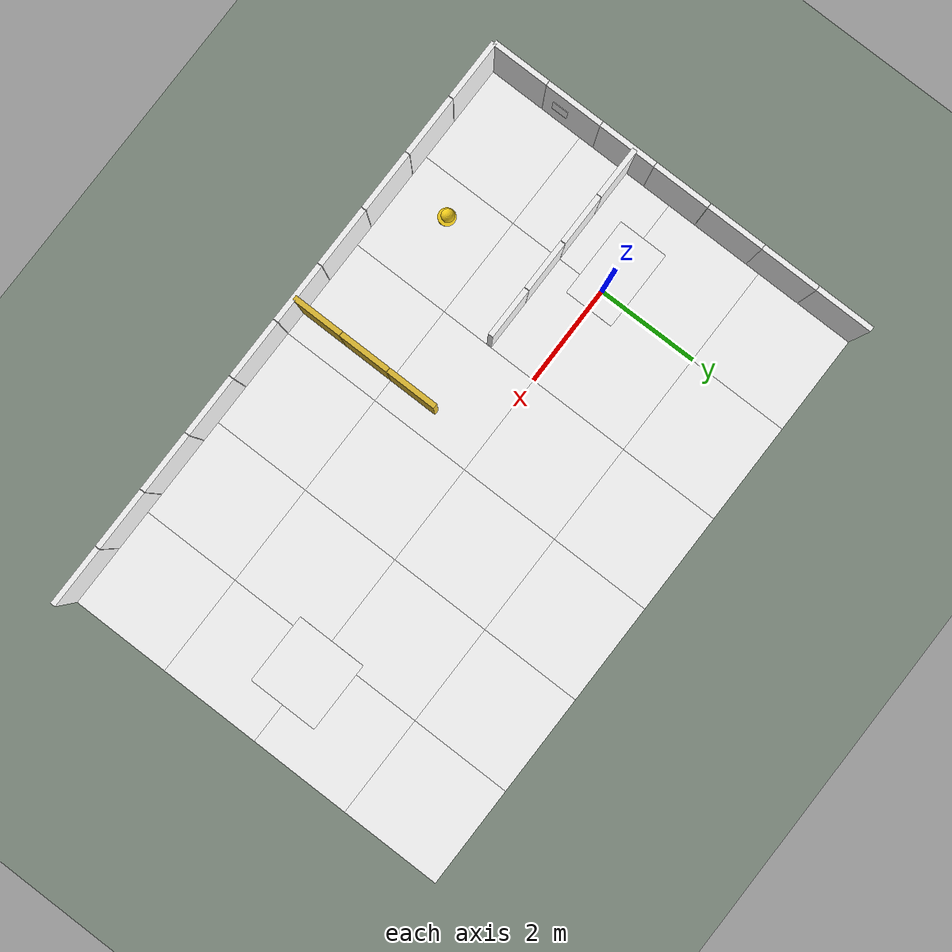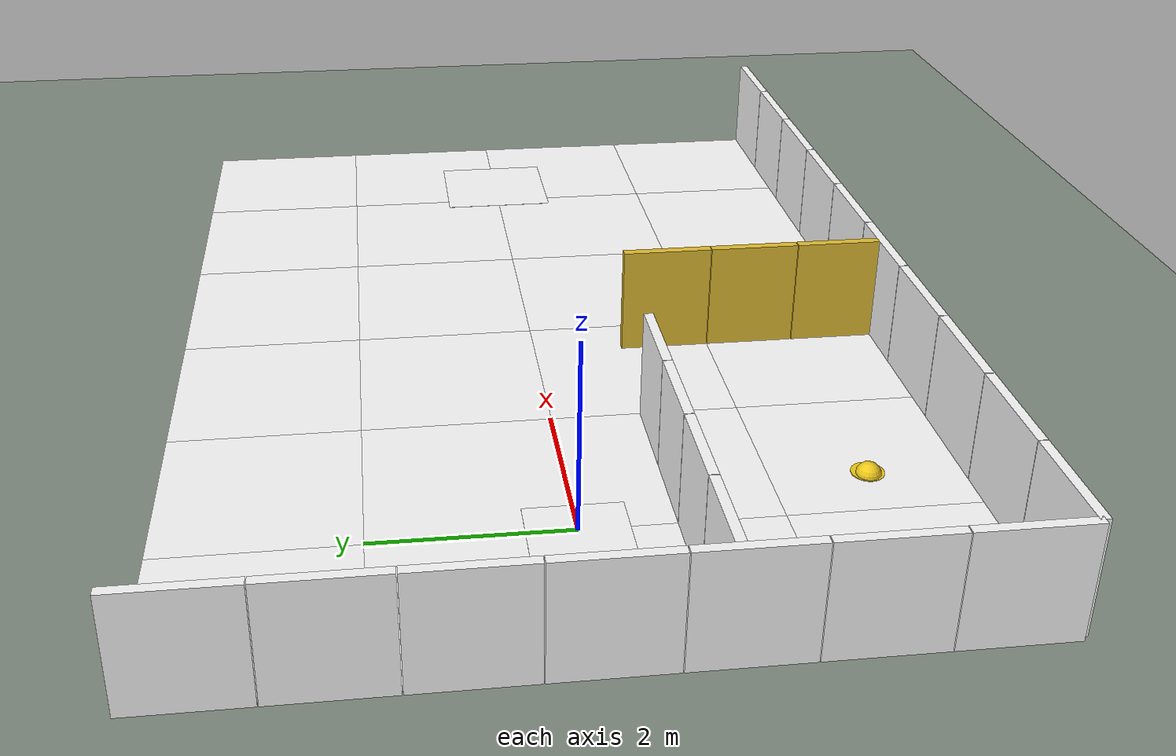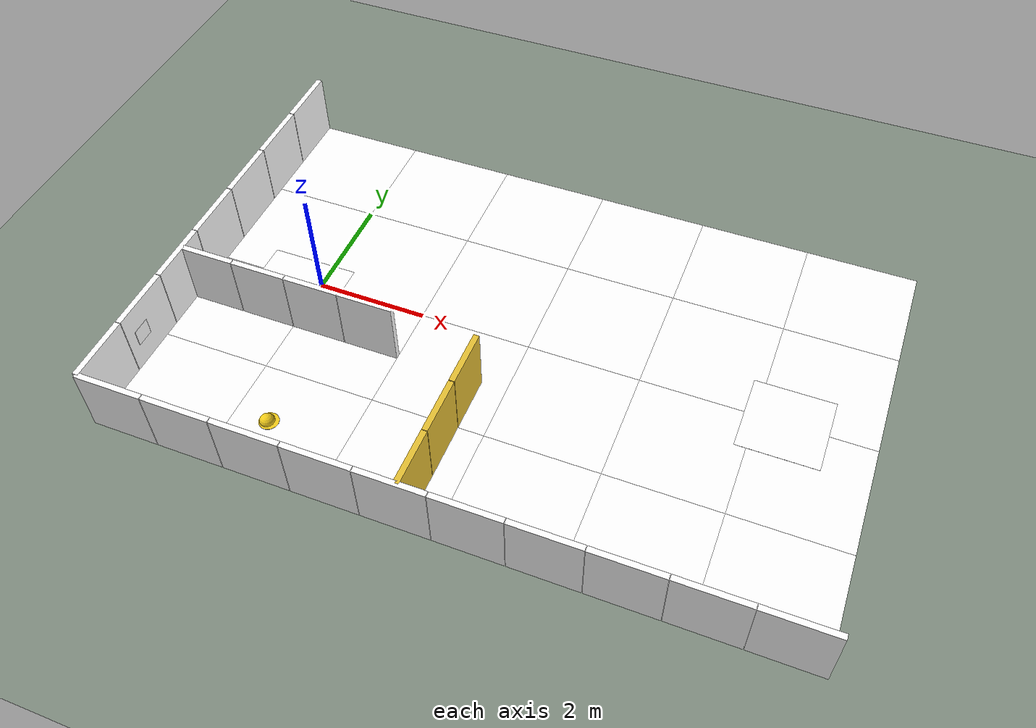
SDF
<sdf version="1.9">
 <world name="rescue_maze">
  <model name="ground_plane">
   <static>true</static>
   <link name="link">
    <collision name="collision">
     <geometry><plane><normal>0 0 1</normal><size>40 40</size></plane></geometry>
    </collision>
    <visual name="visual">
     <geometry><plane><normal>0 0 1</normal><size>40 40</size></plane></geometry>
     <material><ambient>0.5 0.55 0.5 1</ambient><diffuse>0.5 0.55 0.5 1</diffuse></material>
    </visual>
   </link>
  </model>
  <model name="arena_floor">
   <static>true</static>
   <link name="link">
    <visual name="tile_0_0">
     <pose>-1 -3 0.001 0 0 0</pose>
     <geometry><box><size>2 2 0.002</size></box></geometry>
     <material>
      <diffuse>1 1 1 1</diffuse>
      <specular>0.1 0.1 0.1 1</specular>
      <pbr>
       <metal>
        <albedo_map>textures/osb_floor.jpg</albedo_map>
        <roughness>0.9</roughness>
        <metalness>0</metalness>
       </metal>
      </pbr>
     </material>
    </visual>
    <visual name="tile_0_1">
     <pose>-1 -1 0.001 0 0 0</pose>
     <geometry><box><size>2 2 0.002</size></box></geometry>
     <material>
      <diffuse>1 1 1 1</diffuse>
      <specular>0.1 0.1 0.1 1</specular>
      <pbr>
       <metal>
        <albedo_map>textures/osb_floor.jpg</albedo_map>
        <roughness>0.9</roughness>
        <metalness>0</metalness>
       </metal>
      </pbr>
     </material>
    </visual>
    <visual name="tile_0_2">
     <pose>-1 1 0.001 0 0 0</pose>
     <geometry><box><size>2 2 0.002</size></box></geometry>
     <material>
      <diffuse>1 1 1 1</diffuse>
      <specular>0.1 0.1 0.1 1</specular>
      <pbr>
       <metal>
        <albedo_map>textures/osb_floor.jpg</albedo_map>
        <roughness>0.9</roughness>
        <metalness>0</metalness>
       </metal>
      </pbr>
     </material>
    </visual>
    <visual name="tile_0_3">
     <pose>-1 3 0.001 0 0 0</pose>
     <geometry><box><size>2 2 0.002</size></box></geometry>
     <material>
      <diffuse>1 1 1 1</diffuse>
      <specular>0.1 0.1 0.1 1</specular>
      <pbr>
       <metal>
        <albedo_map>textures/osb_floor.jpg</albedo_map>
        <roughness>0.9</roughness>
        <metalness>0</metalness>
       </metal>
      </pbr>
     </material>
    </visual>
    <visual name="tile_1_0">
     <pose>1 -3 0.001 0 0 0</pose>
     <geometry><box><size>2 2 0.002</size></box></geometry>
     <material>
      <diffuse>1 1 1 1</diffuse>
      <specular>0.1 0.1 0.1 1</specular>
      <pbr>
       <metal>
        <albedo_map>textures/osb_floor.jpg</albedo_map>
        <roughness>0.9</roughness>
        <metalness>0</metalness>
       </metal>
      </pbr>
     </material>
    </visual>
    <visual name="tile_1_1">
     <pose>1 -1 0.001 0 0 0</pose>
     <geometry><box><size>2 2 0.002</size></box></geometry>
     <material>
      <diffuse>1 1 1 1</diffuse>
      <specular>0.1 0.1 0.1 1</specular>
      <pbr>
       <metal>
        <albedo_map>textures/osb_floor.jpg</albedo_map>
        <roughness>0.9</roughness>
        <metalness>0</metalness>
       </metal>
      </pbr>
     </material>
    </visual>
    <visual name="tile_1_2">
     <pose>1 1 0.001 0 0 0</pose>
     <geometry><box><size>2 2 0.002</size></box></geometry>
     <material>
      <diffuse>1 1 1 1</diffuse>
      <specular>0.1 0.1 0.1 1</specular>
      <pbr>
       <metal>
        <albedo_map>textures/osb_floor.jpg</albedo_map>
        <roughness>0.9</roughness>
        <metalness>0</metalness>
       </metal>
      </pbr>
     </material>
    </visual>
    <visual name="tile_1_3">
     <pose>1 3 0.001 0 0 0</pose>
     <geometry><box><size>2 2 0.002</size></box></geometry>
     <material>
      <diffuse>1 1 1 1</diffuse>
      <specular>0.1 0.1 0.1 1</specular>
      <pbr>
       <metal>
        <albedo_map>textures/osb_floor.jpg</albedo_map>
        <roughness>0.9</roughness>
        <metalness>0</metalness>
       </metal>
      </pbr>
     </material>
    </visual>
    <visual name="tile_2_0">
     <pose>3 -3 0.001 0 0 0</pose>
     <geometry><box><size>2 2 0.002</size></box></geometry>
     <material>
      <diffuse>1 1 1 1</diffuse>
      <specular>0.1 0.1 0.1 1</specular>
      <pbr>
       <metal>
        <albedo_map>textures/osb_floor.jpg</albedo_map>
        <roughness>0.9</roughness>
        <metalness>0</metalness>
       </metal>
      </pbr>
     </material>
    </visual>
    <visual name="tile_2_1">
     <pose>3 -1 0.001 0 0 0</pose>
     <geometry><box><size>2 2 0.002</size></box></geometry>
     <material>
      <diffuse>1 1 1 1</diffuse>
      <specular>0.1 0.1 0.1 1</specular>
      <pbr>
       <metal>
        <albedo_map>textures/osb_floor.jpg</albedo_map>
        <roughness>0.9</roughness>
        <metalness>0</metalness>
       </metal>
      </pbr>
     </material>
    </visual>
    <visual name="tile_2_2">
     <pose>3 1 0.001 0 0 0</pose>
     <geometry><box><size>2 2 0.002</size></box></geometry>
     <material>
      <diffuse>1 1 1 1</diffuse>
      <specular>0.1 0.1 0.1 1</specular>
      <pbr>
       <metal>
        <albedo_map>textures/osb_floor.jpg</albedo_map>
        <roughness>0.9</roughness>
        <metalness>0</metalness>
       </metal>
      </pbr>
     </material>
    </visual>
    <visual name="tile_2_3">
     <pose>3 3 0.001 0 0 0</pose>
     <geometry><box><size>2 2 0.002</size></box></geometry>
     <material>
      <diffuse>1 1 1 1</diffuse>
      <specular>0.1 0.1 0.1 1</specular>
      <pbr>
       <metal>
        <albedo_map>textures/osb_floor.jpg</albedo_map>
        <roughness>0.9</roughness>
        <metalness>0</metalness>
       </metal>
      </pbr>
     </material>
    </visual>
    <visual name="tile_3_0">
     <pose>5 -3 0.001 0 0 0</pose>
     <geometry><box><size>2 2 0.002</size></box></geometry>
     <material>
      <diffuse>1 1 1 1</diffuse>
      <specular>0.1 0.1 0.1 1</specular>
      <pbr>
       <metal>
        <albedo_map>textures/osb_floor.jpg</albedo_map>
        <roughness>0.9</roughness>
        <metalness>0</metalness>
       </metal>
      </pbr>
     </material>
    </visual>
    <visual name="tile_3_1">
     <pose>5 -1 0.001 0 0 0</pose>
     <geometry><box><size>2 2 0.002</size></box></geometry>
     <material>
      <diffuse>1 1 1 1</diffuse>
      <specular>0.1 0.1 0.1 1</specular>
      <pbr>
       <metal>
        <albedo_map>textures/osb_floor.jpg</albedo_map>
        <roughness>0.9</roughness>
        <metalness>0</metalness>
       </metal>
      </pbr>
     </material>
    </visual>
    <visual name="tile_3_2">
     <pose>5 1 0.001 0 0 0</pose>
     <geometry><box><size>2 2 0.002</size></box></geometry>
     <material>
      <diffuse>1 1 1 1</diffuse>
      <specular>0.1 0.1 0.1 1</specular>
      <pbr>
       <metal>
        <albedo_map>textures/osb_floor.jpg</albedo_map>
        <roughness>0.9</roughness>
        <metalness>0</metalness>
       </metal>
      </pbr>
     </material>
    </visual>
    <visual name="tile_3_3">
     <pose>5 3 0.001 0 0 0</pose>
     <geometry><box><size>2 2 0.002</size></box></geometry>
     <material>
      <diffuse>1 1 1 1</diffuse>
      <specular>0.1 0.1 0.1 1</specular>
      <pbr>
       <metal>
        <albedo_map>textures/osb_floor.jpg</albedo_map>
        <roughness>0.9</roughness>
        <metalness>0</metalness>
       </metal>
      </pbr>
     </material>
    </visual>
    <visual name="tile_4_0">
     <pose>7 -3 0.001 0 0 0</pose>
     <geometry><box><size>2 2 0.002</size></box></geometry>
     <material>
      <diffuse>1 1 1 1</diffuse>
      <specular>0.1 0.1 0.1 1</specular>
      <pbr>
       <metal>
        <albedo_map>textures/osb_floor.jpg</albedo_map>
        <roughness>0.9</roughness>
        <metalness>0</metalness>
       </metal>
      </pbr>
     </material>
    </visual>
    <visual name="tile_4_1">
     <pose>7 -1 0.001 0 0 0</pose>
     <geometry><box><size>2 2 0.002</size></box></geometry>
     <material>
      <diffuse>1 1 1 1</diffuse>
      <specular>0.1 0.1 0.1 1</specular>
      <pbr>
       <metal>
        <albedo_map>textures/osb_floor.jpg</albedo_map>
        <roughness>0.9</roughness>
        <metalness>0</metalness>
       </metal>
      </pbr>
     </material>
    </visual>
    <visual name="tile_4_2">
     <pose>7 1 0.001 0 0 0</pose>
     <geometry><box><size>2 2 0.002</size></box></geometry>
     <material>
      <diffuse>1 1 1 1</diffuse>
      <specular>0.1 0.1 0.1 1</specular>
      <pbr>
       <metal>
        <albedo_map>textures/osb_floor.jpg</albedo_map>
        <roughness>0.9</roughness>
        <metalness>0</metalness>
       </metal>
      </pbr>
     </material>
    </visual>
    <visual name="tile_4_3">
     <pose>7 3 0.001 0 0 0</pose>
     <geometry><box><size>2 2 0.002</size></box></geometry>
     <material>
      <diffuse>1 1 1 1</diffuse>
      <specular>0.1 0.1 0.1 1</specular>
      <pbr>
       <metal>
        <albedo_map>textures/osb_floor.jpg</albedo_map>
        <roughness>0.9</roughness>
        <metalness>0</metalness>
       </metal>
      </pbr>
     </material>
    </visual>
    <visual name="tile_5_0">
     <pose>9 -3 0.001 0 0 0</pose>
     <geometry><box><size>2 2 0.002</size></box></geometry>
     <material>
      <diffuse>1 1 1 1</diffuse>
      <specular>0.1 0.1 0.1 1</specular>
      <pbr>
       <metal>
        <albedo_map>textures/osb_floor.jpg</albedo_map>
        <roughness>0.9</roughness>
        <metalness>0</metalness>
       </metal>
      </pbr>
     </material>
    </visual>
    <visual name="tile_5_1">
     <pose>9 -1 0.001 0 0 0</pose>
     <geometry><box><size>2 2 0.002</size></box></geometry>
     <material>
      <diffuse>1 1 1 1</diffuse>
      <specular>0.1 0.1 0.1 1</specular>
      <pbr>
       <metal>
        <albedo_map>textures/osb_floor.jpg</albedo_map>
        <roughness>0.9</roughness>
        <metalness>0</metalness>
       </metal>
      </pbr>
     </material>
    </visual>
    <visual name="tile_5_2">
     <pose>9 1 0.001 0 0 0</pose>
     <geometry><box><size>2 2 0.002</size></box></geometry>
     <material>
      <diffuse>1 1 1 1</diffuse>
      <specular>0.1 0.1 0.1 1</specular>
      <pbr>
       <metal>
        <albedo_map>textures/osb_floor.jpg</albedo_map>
        <roughness>0.9</roughness>
        <metalness>0</metalness>
       </metal>
      </pbr>
     </material>
    </visual>
    <visual name="tile_5_3">
     <pose>9 3 0.001 0 0 0</pose>
     <geometry><box><size>2 2 0.002</size></box></geometry>
     <material>
      <diffuse>1 1 1 1</diffuse>
      <specular>0.1 0.1 0.1 1</specular>
      <pbr>
       <metal>
        <albedo_map>textures/osb_floor.jpg</albedo_map>
        <roughness>0.9</roughness>
        <metalness>0</metalness>
       </metal>
      </pbr>
     </material>
    </visual>
    <visual name="start_zone">
     <pose>-0.4 0 0.003 0 0 0</pose>
     <geometry><box><size>1.6 1.0 0.002</size></box></geometry>
     <material>
      <diffuse>1 1 1 1</diffuse>
      <specular>0.1 0.1 0.1 1</specular>
      <pbr>
       <metal>
        <albedo_map>textures/start_zone.png</albedo_map>
        <roughness>0.9</roughness>
        <metalness>0</metalness>
       </metal>
      </pbr>
     </material>
    </visual>
    <visual name="end_zone">
     <pose>8.5 0 0.003 0 0 0</pose>
     <geometry><box><size>1.4 1.4 0.002</size></box></geometry>
     <material>
      <diffuse>1 1 1 1</diffuse>
      <specular>0.1 0.1 0.1 1</specular>
      <pbr>
       <metal>
        <albedo_map>textures/end_zone.png</albedo_map>
        <roughness>0.9</roughness>
        <metalness>0</metalness>
       </metal>
      </pbr>
     </material>
    </visual>
   </link>
  </model>
  <model name="wall_1">
   <static>true</static>
   <pose>4.000 -4.000 0.6 0 0 0.0000</pose>
   <link name="link">
    <collision name="collision"><geometry><box><size>12.000 0.1 1.2</size></box></geometry></collision>
    <visual name="panel_0">
     <pose>-5.400 0 0 0 0 0</pose>
     <geometry><box><size>1.190 0.1 1.2</size></box></geometry>
     <material>
      <diffuse>1 1 1 1</diffuse>
      <specular>0.1 0.1 0.1 1</specular>
      <pbr>
       <metal><albedo_map>textures/plywood.jpg</albedo_map><roughness>0.9</roughness><metalness>0</metalness></metal>
      </pbr>
     </material>
    </visual>
    <visual name="panel_1">
     <pose>-4.200 0 0 0 0 0</pose>
     <geometry><box><size>1.190 0.1 1.2</size></box></geometry>
     <material>
      <diffuse>1 1 1 1</diffuse>
      <specular>0.1 0.1 0.1 1</specular>
      <pbr>
       <metal><albedo_map>textures/plywood.jpg</albedo_map><roughness>0.9</roughness><metalness>0</metalness></metal>
      </pbr>
     </material>
    </visual>
    <visual name="panel_2">
     <pose>-3.000 0 0 0 0 0</pose>
     <geometry><box><size>1.190 0.1 1.2</size></box></geometry>
     <material>
      <diffuse>1 1 1 1</diffuse>
      <specular>0.1 0.1 0.1 1</specular>
      <pbr>
       <metal><albedo_map>textures/plywood.jpg</albedo_map><roughness>0.9</roughness><metalness>0</metalness></metal>
      </pbr>
     </material>
    </visual>
    <visual name="panel_3">
     <pose>-1.800 0 0 0 0 0</pose>
     <geometry><box><size>1.190 0.1 1.2</size></box></geometry>
     <material>
      <diffuse>1 1 1 1</diffuse>
      <specular>0.1 0.1 0.1 1</specular>
      <pbr>
       <metal><albedo_map>textures/plywood.jpg</albedo_map><roughness>0.9</roughness><metalness>0</metalness></metal>
      </pbr>
     </material>
    </visual>
    <visual name="panel_4">
     <pose>-0.600 0 0 0 0 0</pose>
     <geometry><box><size>1.190 0.1 1.2</size></box></geometry>
     <material>
      <diffuse>1 1 1 1</diffuse>
      <specular>0.1 0.1 0.1 1</specular>
      <pbr>
       <metal><albedo_map>textures/plywood.jpg</albedo_map><roughness>0.9</roughness><metalness>0</metalness></metal>
      </pbr>
     </material>
    </visual>
    <visual name="panel_5">
     <pose>0.600 0 0 0 0 0</pose>
     <geometry><box><size>1.190 0.1 1.2</size></box></geometry>
     <material>
      <diffuse>1 1 1 1</diffuse>
      <specular>0.1 0.1 0.1 1</specular>
      <pbr>
       <metal><albedo_map>textures/plywood.jpg</albedo_map><roughness>0.9</roughness><metalness>0</metalness></metal>
      </pbr>
     </material>
    </visual>
    <visual name="panel_6">
     <pose>1.800 0 0 0 0 0</pose>
     <geometry><box><size>1.190 0.1 1.2</size></box></geometry>
     <material>
      <diffuse>1 1 1 1</diffuse>
      <specular>0.1 0.1 0.1 1</specular>
      <pbr>
       <metal><albedo_map>textures/plywood.jpg</albedo_map><roughness>0.9</roughness><metalness>0</metalness></metal>
      </pbr>
     </material>
    </visual>
    <visual name="panel_7">
     <pose>3.000 0 0 0 0 0</pose>
     <geometry><box><size>1.190 0.1 1.2</size></box></geometry>
     <material>
      <diffuse>1 1 1 1</diffuse>
      <specular>0.1 0.1 0.1 1</specular>
      <pbr>
       <metal><albedo_map>textures/plywood.jpg</albedo_map><roughness>0.9</roughness><metalness>0</metalness></metal>
      </pbr>
     </material>
    </visual>
    <visual name="panel_8">
     <pose>4.200 0 0 0 0 0</pose>
     <geometry><box><size>1.190 0.1 1.2</size></box></geometry>
     <material>
      <diffuse>1 1 1 1</diffuse>
      <specular>0.1 0.1 0.1 1</specular>
      <pbr>
       <metal><albedo_map>textures/plywood.jpg</albedo_map><roughness>0.9</roughness><metalness>0</metalness></metal>
      </pbr>
     </material>
    </visual>
    <visual name="panel_9">
     <pose>5.400 0 0 0 0 0</pose>
     <geometry><box><size>1.190 0.1 1.2</size></box></geometry>
     <material>
      <diffuse>1 1 1 1</diffuse>
      <specular>0.1 0.1 0.1 1</specular>
      <pbr>
       <metal><albedo_map>textures/plywood.jpg</albedo_map><roughness>0.9</roughness><metalness>0</metalness></metal>
      </pbr>
     </material>
    </visual>
   </link>
  </model>
  <model name="wall_2">
   <static>true</static>
   <pose>-2.000 0.000 0.6 0 0 1.5708</pose>
   <link name="link">
    <collision name="collision"><geometry><box><size>8.000 0.1 1.2</size></box></geometry></collision>
    <visual name="panel_0">
     <pose>-3.429 0 0 0 0 0</pose>
     <geometry><box><size>1.133 0.1 1.2</size></box></geometry>
     <material>
      <diffuse>1 1 1 1</diffuse>
      <specular>0.1 0.1 0.1 1</specular>
      <pbr>
       <metal><albedo_map>textures/plywood.jpg</albedo_map><roughness>0.9</roughness><metalness>0</metalness></metal>
      </pbr>
     </material>
    </visual>
    <visual name="panel_1">
     <pose>-2.286 0 0 0 0 0</pose>
     <geometry><box><size>1.133 0.1 1.2</size></box></geometry>
     <material>
      <diffuse>1 1 1 1</diffuse>
      <specular>0.1 0.1 0.1 1</specular>
      <pbr>
       <metal><albedo_map>textures/plywood.jpg</albedo_map><roughness>0.9</roughness><metalness>0</metalness></metal>
      </pbr>
     </material>
    </visual>
    <visual name="panel_2">
     <pose>-1.143 0 0 0 0 0</pose>
     <geometry><box><size>1.133 0.1 1.2</size></box></geometry>
     <material>
      <diffuse>1 1 1 1</diffuse>
      <specular>0.1 0.1 0.1 1</specular>
      <pbr>
       <metal><albedo_map>textures/plywood.jpg</albedo_map><roughness>0.9</roughness><metalness>0</metalness></metal>
      </pbr>
     </material>
    </visual>
    <visual name="panel_3">
     <geometry><box><size>1.133 0.1 1.2</size></box></geometry>
     <material>
      <diffuse>1 1 1 1</diffuse>
      <specular>0.1 0.1 0.1 1</specular>
      <pbr>
       <metal><albedo_map>textures/plywood.jpg</albedo_map><roughness>0.9</roughness><metalness>0</metalness></metal>
      </pbr>
     </material>
    </visual>
    <visual name="panel_4">
     <pose>1.143 0 0 0 0 0</pose>
     <geometry><box><size>1.133 0.1 1.2</size></box></geometry>
     <material>
      <diffuse>1 1 1 1</diffuse>
      <specular>0.1 0.1 0.1 1</specular>
      <pbr>
       <metal><albedo_map>textures/plywood.jpg</albedo_map><roughness>0.9</roughness><metalness>0</metalness></metal>
      </pbr>
     </material>
    </visual>
    <visual name="panel_5">
     <pose>2.286 0 0 0 0 0</pose>
     <geometry><box><size>1.133 0.1 1.2</size></box></geometry>
     <material>
      <diffuse>1 1 1 1</diffuse>
      <specular>0.1 0.1 0.1 1</specular>
      <pbr>
       <metal><albedo_map>textures/plywood.jpg</albedo_map><roughness>0.9</roughness><metalness>0</metalness></metal>
      </pbr>
     </material>
    </visual>
    <visual name="panel_6">
     <pose>3.429 0 0 0 0 0</pose>
     <geometry><box><size>1.133 0.1 1.2</size></box></geometry>
     <material>
      <diffuse>1 1 1 1</diffuse>
      <specular>0.1 0.1 0.1 1</specular>
      <pbr>
       <metal><albedo_map>textures/plywood.jpg</albedo_map><roughness>0.9</roughness><metalness>0</metalness></metal>
      </pbr>
     </material>
    </visual>
   </link>
  </model>
  <model name="wall_7">
   <static>true</static>
   <pose>0.000 -1.000 0.6 0 0 0.0000</pose>
   <link name="link">
    <collision name="collision"><geometry><box><size>4.000 0.1 1.2</size></box></geometry></collision>
    <visual name="panel_0">
     <pose>-1.500 0 0 0 0 0</pose>
     <geometry><box><size>0.990 0.1 1.2</size></box></geometry>
     <material>
      <diffuse>1 1 1 1</diffuse>
      <specular>0.1 0.1 0.1 1</specular>
      <pbr>
       <metal><albedo_map>textures/plywood.jpg</albedo_map><roughness>0.9</roughness><metalness>0</metalness></metal>
      </pbr>
     </material>
    </visual>
    <visual name="panel_1">
     <pose>-0.500 0 0 0 0 0</pose>
     <geometry><box><size>0.990 0.1 1.2</size></box></geometry>
     <material>
      <diffuse>1 1 1 1</diffuse>
      <specular>0.1 0.1 0.1 1</specular>
      <pbr>
       <metal><albedo_map>textures/plywood.jpg</albedo_map><roughness>0.9</roughness><metalness>0</metalness></metal>
      </pbr>
     </material>
    </visual>
    <visual name="panel_2">
     <pose>0.500 0 0 0 0 0</pose>
     <geometry><box><size>0.990 0.1 1.2</size></box></geometry>
     <material>
      <diffuse>1 1 1 1</diffuse>
      <specular>0.1 0.1 0.1 1</specular>
      <pbr>
       <metal><albedo_map>textures/plywood.jpg</albedo_map><roughness>0.9</roughness><metalness>0</metalness></metal>
      </pbr>
     </material>
    </visual>
    <visual name="panel_3">
     <pose>1.500 0 0 0 0 0</pose>
     <geometry><box><size>0.990 0.1 1.2</size></box></geometry>
     <material>
      <diffuse>1 1 1 1</diffuse>
      <specular>0.1 0.1 0.1 1</specular>
      <pbr>
       <metal><albedo_map>textures/plywood.jpg</albedo_map><roughness>0.9</roughness><metalness>0</metalness></metal>
      </pbr>
     </material>
    </visual>
   </link>
  </model>
  <model name="wall_11">
   <static>true</static>
   <pose>3.500 -2.500 0.6 0 0 1.5708</pose>
   <link name="link">
    <collision name="collision"><geometry><box><size>3.000 0.1 1.2</size></box></geometry></collision>
    <visual name="panel_0">
     <pose>-1.000 0 0 0 0 0</pose>
     <geometry><box><size>0.990 0.1 1.2</size></box></geometry>
     <material>
      <ambient>0.9 0.75 0.2 1</ambient>
      <diffuse>0.9 0.75 0.2 1</diffuse>
      <specular>0.1 0.1 0.1 1</specular>
     </material>
    </visual>
    <visual name="panel_1">
     <geometry><box><size>0.990 0.1 1.2</size></box></geometry>
     <material>
      <ambient>0.9 0.75 0.2 1</ambient>
      <diffuse>0.9 0.75 0.2 1</diffuse>
      <specular>0.1 0.1 0.1 1</specular>
     </material>
    </visual>
    <visual name="panel_2">
     <pose>1.000 0 0 0 0 0</pose>
     <geometry><box><size>0.990 0.1 1.2</size></box></geometry>
     <material>
      <ambient>0.9 0.75 0.2 1</ambient>
      <diffuse>0.9 0.75 0.2 1</diffuse>
      <specular>0.1 0.1 0.1 1</specular>
     </material>
    </visual>
   </link>
  </model>
  <model name="sign_3_hazmat_oxidizer">
   <static>true</static>
   <pose>-1.94 -2.5 0.6 0 0 0.0000</pose>
   <link name="link">
    <visual name="board">
     <geometry><box><size>0.008 0.32 0.32</size></box></geometry>
     <material>
      <diffuse>1 1 1 1</diffuse>
      <specular>0.1 0.1 0.1 1</specular>
      <pbr>
       <metal>
        <albedo_map>textures/hazmat_oxidizer.png</albedo_map>
        <roughness>0.9</roughness>
        <metalness>0</metalness>
       </metal>
      </pbr>
     </material>
    </visual>
   </link>
  </model>
  <model name="hard_hat">
   <static>true</static>
   <pose>0.6 -3.0 0 0 0 0</pose>
   <link name="link">
    <collision name="dome_collision"><geometry><sphere><radius>0.13</radius></sphere></geometry></collision>
    <visual name="dome">
     <geometry><sphere><radius>0.13</radius></sphere></geometry>
     <material>
      <ambient>0.95 0.8 0.1 1</ambient>
      <diffuse>0.95 0.8 0.1 1</diffuse>
      <specular>0.1 0.1 0.1 1</specular>
     </material>
    </visual>
    <collision name="brim_collision">
     <pose>0.03 0 0.005 0 0 0</pose>
     <geometry><cylinder><radius>0.17</radius><length>0.01</length></cylinder></geometry>
    </collision>
    <visual name="brim">
     <pose>0.03 0 0.005 0 0 0</pose>
     <geometry><cylinder><radius>0.17</radius><length>0.01</length></cylinder></geometry>
     <material>
      <ambient>0.95 0.8 0.1 1</ambient>
      <diffuse>0.95 0.8 0.1 1</diffuse>
      <specular>0.1 0.1 0.1 1</specular>
     </material>
    </visual>
   </link>
  </model>
  <model name="overview_camera">
   <static>true</static>
   <pose>4 0 9.5 0 1.5708 1.5708</pose>
   <link name="link">
    <sensor name="overview" type="camera">
     <update_rate>2</update_rate>
     <topic>overview/image</topic>
     <camera>
      <horizontal_fov>1.25</horizontal_fov>
      <image><width>960</width><height>640</height></image>
      <clip><near>0.5</near><far>30</far></clip>
     </camera>
    </sensor>
   </link>
  </model>
 </world>
</sdf>
